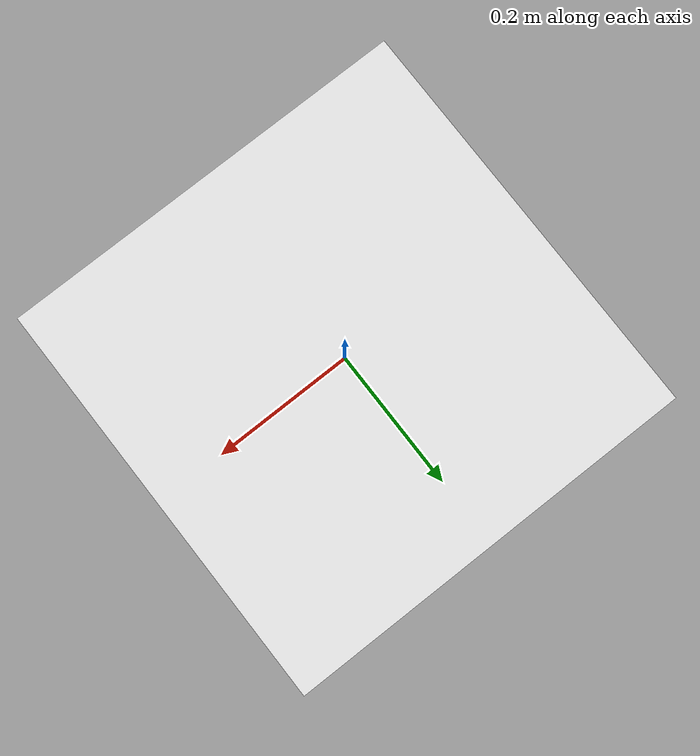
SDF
<?xml version="1.0"?>
<sdf version="1.9">
  <model name="gcp_small_1">
    <static>true</static>
    <link name="base">
      <!-- z = half thickness so bottom face sits exactly on the ground plane -->
      <pose>0 0 0.0015 0 0 0</pose>

      <collision name="collision">
        <geometry><box><size>0.6 0.6 0.003</size></box></geometry>
      </collision>

      <visual name="visual">
        <geometry><box><size>0.6 0.6 0.003</size></box></geometry>
        <material>
          <diffuse>1 1 1 1</diffuse>
          <specular>0.05 0.05 0.05 1</specular>
          <pbr><metal>
            <albedo_map>model://gcp_small_1/materials/textures/gcp_small_1.png</albedo_map>
            <metalness>0.0</metalness>
            <roughness>1.0</roughness>
          </metal></pbr>
        </material>
      </visual>
    </link>
  </model>
</sdf>
